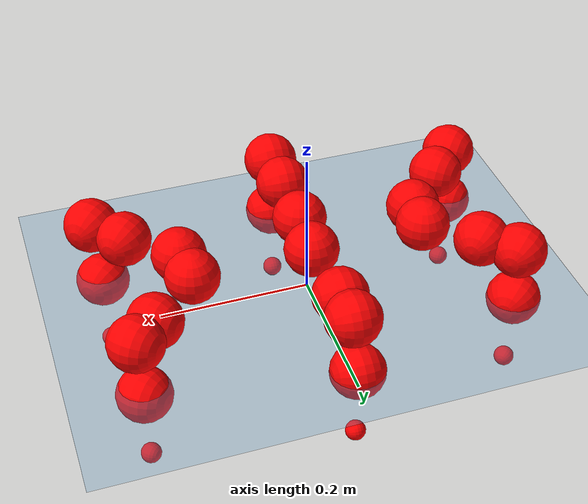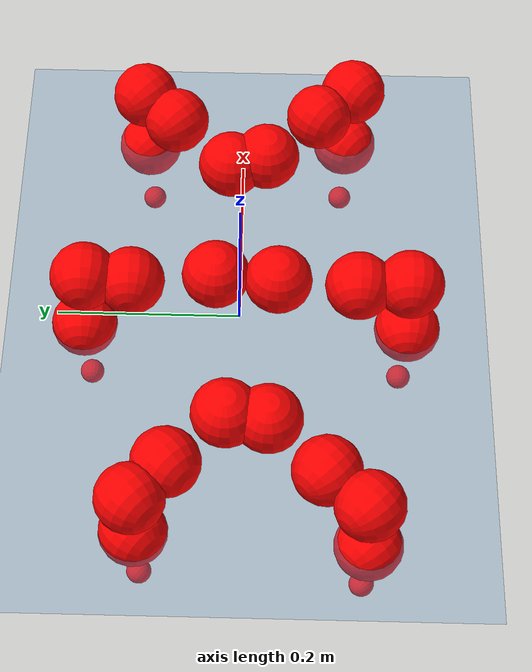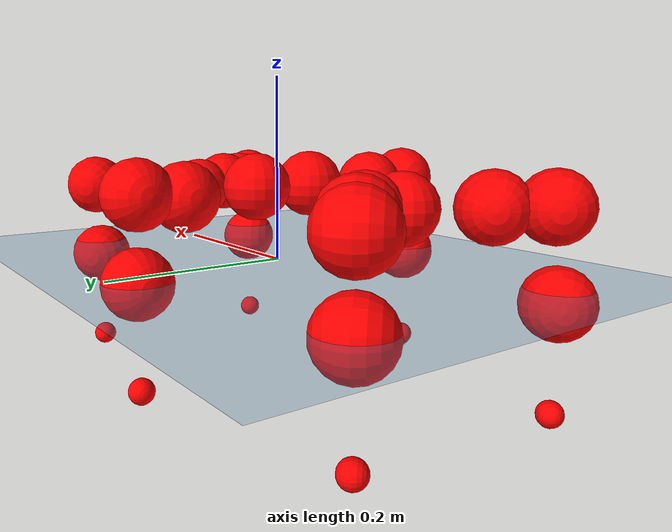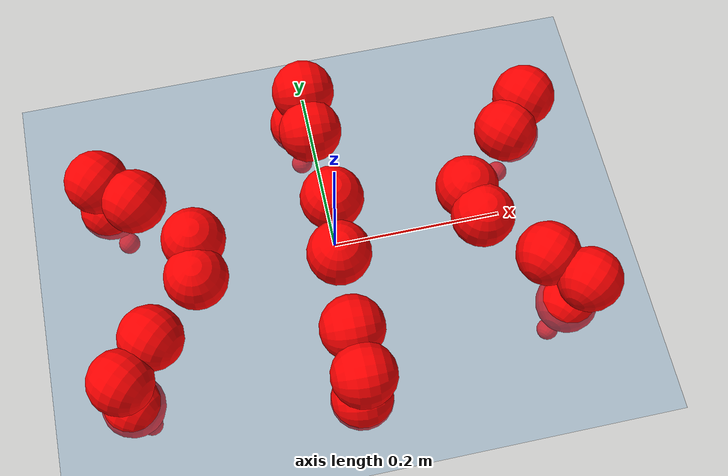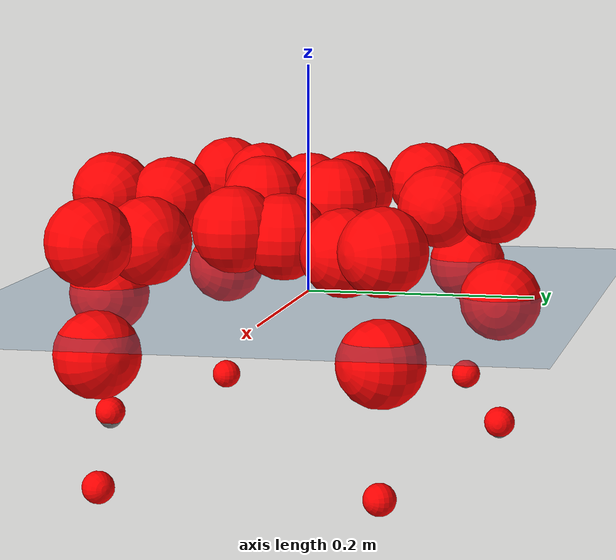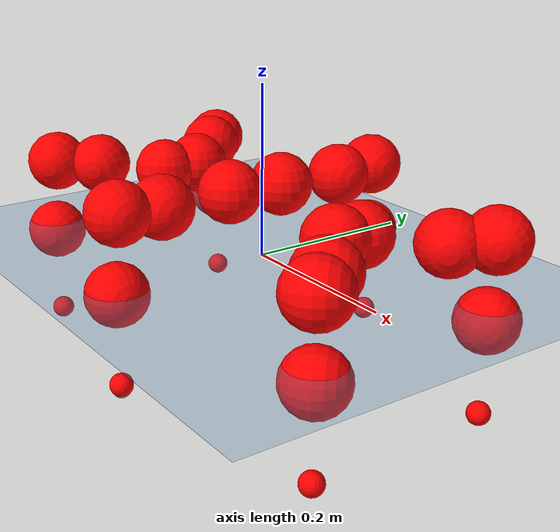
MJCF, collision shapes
<mujoco model="Golem">
  <compiler angle="radian" assetdir="assets" balanceinertia="true" inertiafromgeom="false"/>

  <option timestep="0.005" density="1.2" viscosity="2e-05"/>

  <size nkey="1"/>

  <visual>
    <quality shadowsize="8192"/>
    <map shadowclip="0.5"/>
  </visual>

  <default>
    <default class="/">
      <joint armature="0.01" damping="0.01" frictionloss="0.01"/>
      <geom contype="0" conaffinity="0" group="1" solref="-1000 -80"/>
      <site size="0.01 0.005 0.005" group="5"/>
      <general forcelimited="true" biastype="affine" gainprm="25" biasprm="0 -25 -0.5"/>
      <default class="visual">
        <geom type="mesh" group="2"/>
      </default>
      <default class="collision">
        <geom group="3"/>
      </default>
      <default class="foot">
        <geom size="0.01 0 0" condim="6" group="4" priority="1" solimp="0.015 1 0.01"/>
      </default>
      <default class="reward_collision_sphere">
        <geom group="5" rgba="1 0 0 1"/>
      </default>
    </default>
  </default>

  <asset>
    <texture type="skybox" colorspace="auto" name="//unnamed_texture_0" builtin="gradient" rgb1="0.95 0.95 0.95" rgb2="0.95 0.95 0.95" width="100" height="600"/>
    <texture type="2d" colorspace="auto" name="texplane" builtin="checker" rgb1="0.345 0.575 0.748" rgb2="0.345 0.575 0.748" markrgb="1 1 1" width="512" height="512"/>
    <material name="MatPlane" class="/" texture="texplane" texuniform="true" texrepeat="2 2" specular="0.9"/>
    <mesh name="body" class="/" file="body.stl" scale="0.001 0.001 0.001"/>
    <mesh name="coxa" class="/" file="coxa.stl" scale="0.001 0.001 0.001"/>
    <mesh name="femur" class="/" file="femur.stl" scale="0.001 0.001 0.001"/>
    <mesh name="tibia" class="/" file="tibia.stl" scale="0.001 0.001 0.001"/>
    <mesh name="tarsus" class="/" file="tarsus.stl" scale="0.001 0.001 0.001"/>
  </asset>

  <worldbody>
    <geom name="floor" class="/" size="100 100 0.125" type="plane" group="0" material="MatPlane"/>
    <light name="toplight_shadow" class="/" pos="0 0 5" dir="0.0990148 0.0990148 -0.990148" type="directional" ambient="0.04 0.04 0.04" diffuse="0.55 0.55 0.55" specular="0.12 0.12 0.12"/>
    <light name="toplight_fill" class="/" pos="0 0 5" dir="0.0990148 0.0990148 -0.990148" type="directional" castshadow="false" ambient="0.04 0.04 0.04" diffuse="0.3 0.3 0.3" specular="0.08 0.08 0.08"/>
    <body name="trunk" pos="-0.000663328 -0.00679342 -0.00288455" quat="1 6.00072e-05 7.23678e-05 -0.000799841">
      <inertial pos="0.00150801 0.000987127 0.00799336" quat="0.999942 -0.00399007 -0.00668315 -0.00746965" mass="2.38282" diaginertia="0.0103207 0.000240871 0.028"/>
      <joint name="//unnamed_joint_0" type="free"/>
      <geom name="//unnamed_geom_1" class="/" pos="0 0 0.0782606" quat="1 0 0 0" type="mesh" rgba="0.9 0.9 0.9 1" mesh="body"/>
      <site name="imu" class="/" pos="0.121552 0.0173653 0.111867" size="0.00905454"/>
      <camera name="track" class="/" pos="0 -0.959135 0" quat="0.707107 0.707107 0 0" mode="trackcom"/>
      <camera name="ego_camera" class="/" pos="0.131816 0 0.122282" quat="-0.5 -0.5 0.5 0.5"/>
      <body name="coxa_RR" pos="-0.182815 -0.0474778 0.0735634" quat="0.382054 0.00281012 -0.00108899 -0.924135">
        <inertial pos="0.000238788 0.00812036 -0.00755245" quat="0.999945 0.0102385 -0.0020876 -0.000873594" mass="0.13606" diaginertia="0.0103594 0.000250708 0.0272468"/>
        <joint name="coxa_joint_RR" class="/" pos="0 0 0" axis="-0.0036826 0.00901458 -0.999953" range="-3.23322 3.12569" armature="0.00879064" damping="0.0241154" frictionloss="0.0082221"/>
        <geom name="//unnamed_geom_2" class="/" type="mesh" rgba="0.2 0.2 0.2 1" mesh="coxa"/>
        <geom name="//unnamed_geom_3" class="reward_collision_sphere" size="0.0362182" pos="-0.0304192 0 0"/>
        <body name="femur_RR" pos="0.0522329 0.00104963 0.00338463" quat="0.501024 -0.497682 0.499401 0.501882">
          <inertial pos="0.0047163 -0.00162614 -0.000708587" quat="1 -9.73585e-05 -0.000121523 9.24682e-06" mass="0.144234" diaginertia="0.0103857 0.000243005 0.0263096"/>
          <joint name="femur_joint_RR" class="/" pos="0 0 0" axis="0.00240127 0.0119658 -0.999926" range="-3.06754 3.08612" armature="0.0111139" damping="0.0259643" frictionloss="0.00935137"/>
          <geom name="//unnamed_geom_4" class="/" type="mesh" rgba="0.9 0.9 0.9 1" mesh="femur"/>
          <geom name="//unnamed_geom_5" class="reward_collision_sphere" size="0.0362182"/>
          <body name="tibia_RR" pos="-0.0016382 -0.0560705 0.00319074" quat="0.000287805 1 -0.000460682 -0.000644136">
            <inertial pos="-0.00217096 0.00208513 0.000879709" quat="0.999927 0.0119712 0.0014512 -0.000414401" mass="0.153206" diaginertia="0.0102161 0.000231355 0.02375"/>
            <joint name="tibia_joint_RR" class="/" pos="0 0 0" axis="-0.00523617 -0.02038 0.999779" stiffness="0.00699479" range="-3.10601 3.32466" armature="0.00828007" damping="0" frictionloss="0.00985498"/>
            <geom name="//unnamed_geom_6" class="/" type="mesh" rgba="0.2 0.2 0.2 1" mesh="tibia"/>
            <geom name="//unnamed_geom_7" class="reward_collision_sphere" size="0.0362182"/>
            <body name="tarsus_RR" pos="0.090816 0.00669125 7.37585e-06" quat="1 0.000463147 -0.000449859 -0.000735548">
              <inertial pos="0.0563423 -0.00913597 0.00570491" quat="0.503034 0.503891 0.49297 0.500031" mass="0.132085" diaginertia="0.0101148 0.000215029 0.0246909"/>
              <joint name="tarsus_joint_RR" class="/" pos="0 0 0" axis="-0.00801496 -0.0138678 0.999872" range="-3.29709 3.1499" armature="0.00890082" damping="0.0464052" frictionloss="0.00811061"/>
              <geom name="//unnamed_geom_8" class="/" type="mesh" rgba="0.9 0.9 0.9 1" mesh="tarsus"/>
              <geom name="foot_1" class="foot" size="0.00865145" pos="0.113565 0 0" quat="0 -0.707107 0 0.707107"/>
              <geom name="//unnamed_geom_10" class="reward_collision_sphere" size="0.0362182"/>
              <geom name="//unnamed_geom_11" class="reward_collision_sphere" size="0.0135818" pos="0.109002 0 0"/>
              <site name="foot_1" class="foot" pos="0.113565 0 0" quat="0 -0.707107 0 0.707107" size="0.00905454"/>
            </body>
          </body>
        </body>
      </body>
      <body name="coxa_RM" pos="-0.00280513 -0.0645708 0.0858101" quat="0.707203 -7.19048e-05 -5.29161e-05 -0.707011">
        <inertial pos="-0.00131267 -0.0015196 0.000399465" quat="0.999956 -0.00844838 -0.00411617 -0.000311361" mass="0.156433" diaginertia="0.0108203 0.000249586 0.0275386"/>
        <joint name="coxa_joint_RM" class="/" pos="0 0 0" axis="-0.000581159 -0.00562766 -0.999984" stiffness="0.0360775" range="-3.1619 3.1279" armature="0.00839079" damping="0.033132" frictionloss="0.0130543"/>
        <geom name="//unnamed_geom_12" class="/" type="mesh" rgba="0.2 0.2 0.2 1" mesh="coxa"/>
        <geom name="//unnamed_geom_13" class="reward_collision_sphere" size="0.0362182" pos="-0.0304192 0 0"/>
        <body name="femur_RM" pos="0.0550551 -0.00349519 -0.00302728" quat="0.499866 -0.500506 0.499469 0.500158">
          <inertial pos="-0.000976582 0.00222502 -0.00481646" quat="0.999989 0.00207787 -0.00362698 0.00216412" mass="0.140679" diaginertia="0.0113376 0.000247209 0.0264788"/>
          <joint name="femur_joint_RM" class="/" pos="0 0 0" axis="0.00167839 -0.00527154 -0.999985" stiffness="0.00408286" range="-3.12278 3.18099" armature="0.00802377" damping="0.0299586" frictionloss="0.00816598"/>
          <geom name="//unnamed_geom_14" class="/" type="mesh" rgba="0.9 0.9 0.9 1" mesh="femur"/>
          <geom name="//unnamed_geom_15" class="reward_collision_sphere" size="0.0362182"/>
          <body name="tibia_RM" pos="-0.00343406 -0.0538394 0.000870994" quat="-2.05535e-05 1 -6.15047e-05 -0.00041518">
            <inertial pos="0.00810902 0.00682588 -8.97137e-05" quat="0.999142 0.0141354 -0.0378988 -0.00884882" mass="0.151087" diaginertia="0.0104794 0.000254066 0.0301165"/>
            <joint name="tibia_joint_RM" class="/" pos="0 0 0" axis="0.00763435 -0.0023853 0.999968" range="-3.09822 3.10533" armature="0.00802676" damping="0" frictionloss="0.00782269"/>
            <geom name="//unnamed_geom_16" class="/" type="mesh" rgba="0.2 0.2 0.2 1" mesh="tibia"/>
            <geom name="//unnamed_geom_17" class="reward_collision_sphere" size="0.0362182"/>
            <body name="tarsus_RM" pos="0.091127 0.00437938 0.000828251" quat="1 0.000169669 9.81622e-05 0.000327803">
              <inertial pos="0.0592204 0.00343578 -0.00119646" quat="0.495001 0.504278 0.506151 0.494458" mass="0.141277" diaginertia="0.0101338 0.000237408 0.0262646"/>
              <joint name="tarsus_joint_RM" class="/" pos="0 0 0" axis="0.00140421 0.00323335 0.999994" stiffness="0.00481277" range="-3.14657 3.09982" armature="0.0124993" damping="0" frictionloss="0.00998496"/>
              <geom name="//unnamed_geom_18" class="/" type="mesh" rgba="0.9 0.9 0.9 1" mesh="tarsus"/>
              <geom name="foot_2" class="foot" size="0.0107786" pos="0.113565 0 0" quat="0 -0.707107 0 0.707107"/>
              <geom name="//unnamed_geom_20" class="reward_collision_sphere" size="0.0362182"/>
              <geom name="//unnamed_geom_21" class="reward_collision_sphere" size="0.0135818" pos="0.109002 0 0"/>
              <site name="foot_2" class="foot" pos="0.113565 0 0" quat="0 -0.707107 0 0.707107" size="0.00905454"/>
            </body>
          </body>
        </body>
      </body>
      <body name="coxa_RF" pos="0.186339 -0.0412299 0.0771963" quat="0.923867 1.15708e-05 2.91346e-05 -0.382714">
        <inertial pos="-0.00589858 -0.000156322 -0.000231712" quat="0.999953 -0.000447227 -0.00947056 -0.00201291" mass="0.146301" diaginertia="0.009699 0.000258039 0.0296008"/>
        <joint name="coxa_joint_RF" class="/" pos="0 0 0" axis="0.00357699 0.00363333 -0.999987" range="-3.07689 3.09754" armature="0.00994285" damping="0.03301" frictionloss="0.00808346"/>
        <geom name="//unnamed_geom_22" class="/" type="mesh" rgba="0.2 0.2 0.2 1" mesh="coxa"/>
        <geom name="//unnamed_geom_23" class="reward_collision_sphere" size="0.0362182" pos="-0.0304192 0 0"/>
        <body name="femur_RF" pos="0.0529617 0.00106461 -0.00344341" quat="0.49972 -0.501138 0.500264 0.498875">
          <inertial pos="-0.00314226 -0.00184687 0.00510134" quat="0.999997 -2.14981e-05 -0.00233293 0.000290507" mass="0.152113" diaginertia="0.010613 0.00022011 0.0271005"/>
          <joint name="femur_joint_RF" class="/" pos="0 0 0" axis="0.00313679 -0.00588933 -0.999978" stiffness="0.0163025" range="-3.26201 3.11959" armature="0.00730324" damping="0.0298227" frictionloss="0.00886292"/>
          <geom name="//unnamed_geom_24" class="/" type="mesh" rgba="0.9 0.9 0.9 1" mesh="femur"/>
          <geom name="//unnamed_geom_25" class="reward_collision_sphere" size="0.0362182"/>
          <body name="tibia_RF" pos="-0.00200065 -0.052804 -0.00248402" quat="0.000478803 1 -9.76469e-05 -0.000265666">
            <inertial pos="-0.000438763 -0.00336794 0.00219052" quat="0.999998 -0.00161757 -0.000763021 -0.00113766" mass="0.14922" diaginertia="0.00958756 0.000264239 0.0257916"/>
            <joint name="tibia_joint_RF" class="/" pos="0 0 0" axis="-0.000209092 0.00451229 0.99999" range="-3.0962 3.11313" armature="0.00861351" damping="0.00484464" frictionloss="0.0114447"/>
            <geom name="//unnamed_geom_26" class="/" type="mesh" rgba="0.2 0.2 0.2 1" mesh="tibia"/>
            <geom name="//unnamed_geom_27" class="reward_collision_sphere" size="0.0362182"/>
            <body name="tarsus_RF" pos="0.0914919 -0.00696394 4.13812e-05" quat="0.999993 -0.00116605 -0.00289103 -0.00213054">
              <inertial pos="0.0659304 0.00790229 -0.00105534" quat="0.519602 0.514934 0.500379 0.463118" mass="0.153853" diaginertia="0.00950728 0.000273526 0.0264514"/>
              <joint name="tarsus_joint_RF" class="/" pos="0 0 0" axis="-0.017861 -0.0178015 0.999682" stiffness="0.0382279" range="-3.29123 3.09717" armature="0.00507255" damping="0.000146056" frictionloss="0.00936241"/>
              <geom name="//unnamed_geom_28" class="/" type="mesh" rgba="0.9 0.9 0.9 1" mesh="tarsus"/>
              <geom name="foot_3" class="foot" size="0.00884194" pos="0.113565 0 0" quat="0 -0.707107 0 0.707107"/>
              <geom name="//unnamed_geom_30" class="reward_collision_sphere" size="0.0362182"/>
              <geom name="//unnamed_geom_31" class="reward_collision_sphere" size="0.0135818" pos="0.109002 0 0"/>
              <site name="foot_3" class="foot" pos="0.113565 0 0" quat="0 -0.707107 0 0.707107" size="0.00905454"/>
            </body>
          </body>
        </body>
      </body>
      <body name="coxa_LR" pos="-0.178828 0.0391325 0.0762605" quat="0.382777 0.000533606 7.6032e-05 0.923841">
        <inertial pos="-0.00035083 0.00826157 0.00110682" quat="0.999664 0.0254601 -0.0018627 0.00446454" mass="0.159637" diaginertia="0.0120595 0.000253308 0.0307679"/>
        <joint name="coxa_joint_LR" class="/" pos="0 0 0" axis="0.00807467 -0.00152814 -0.999966" stiffness="0.0190598" range="-3.10965 2.9843" armature="0.0121966" damping="0" frictionloss="0.0082471"/>
        <geom name="//unnamed_geom_32" class="/" type="mesh" rgba="0.2 0.2 0.2 1" mesh="coxa"/>
        <geom name="//unnamed_geom_33" class="reward_collision_sphere" size="0.0362182" pos="-0.0304192 0 0"/>
        <body name="femur_LR" pos="0.0514499 0.000299061 0.0037811" quat="0.501448 -0.498926 0.500525 0.499096">
          <inertial pos="0.000256866 0.000302061 0.00144382" quat="0.999271 0.00228115 0.031766 -0.0210396" mass="0.150345" diaginertia="0.0107643 0.000247671 0.023715"/>
          <joint name="femur_joint_LR" class="/" pos="0 0 0" axis="0.00912472 -0.00290353 0.999954" stiffness="0.0264221" range="-3.31441 3.24289" armature="0.00795012" damping="0.0310724" frictionloss="0.00813189"/>
          <geom name="//unnamed_geom_34" class="/" type="mesh" rgba="0.9 0.9 0.9 1" mesh="femur"/>
          <geom name="//unnamed_geom_35" class="reward_collision_sphere" size="0.0362182"/>
          <body name="tibia_LR" pos="0.00309042 -0.0510511 0.00364378" quat="5.11818e-05 0.999999 0.00108473 5.87289e-05">
            <inertial pos="-0.00203181 0.00773943 -0.00381363" quat="0.9999 -0.00255915 -0.00261612 -0.0136667" mass="0.152167" diaginertia="0.0104503 0.000254602 0.0278395"/>
            <joint name="tibia_joint_LR" class="/" pos="0 0 0" axis="6.68956e-05 0.00064344 -1" range="-3.03428 3.08756" armature="0.010149" damping="0.0602313" frictionloss="0.00763164"/>
            <geom name="//unnamed_geom_36" class="/" type="mesh" rgba="0.2 0.2 0.2 1" mesh="tibia"/>
            <geom name="//unnamed_geom_37" class="reward_collision_sphere" size="0.0362182"/>
            <body name="tarsus_LR" pos="0.0801945 0.00104961 0.000157651" quat="0.999995 -0.000446401 -0.000802765 -0.00290019">
              <inertial pos="0.0552547 -0.000919629 0.00106093" quat="0.50702 0.509768 0.48975 0.493166" mass="0.141572" diaginertia="0.0106087 0.000240954 0.0269198"/>
              <joint name="tarsus_joint_LR" class="/" pos="0 0 0" axis="-0.0103326 -0.0117713 -0.999877" stiffness="0.0301235" range="-3.0134 3.15952" armature="0.0089538" damping="0.0235941" frictionloss="0.0120913"/>
              <geom name="//unnamed_geom_38" class="/" type="mesh" rgba="0.9 0.9 0.9 1" mesh="tarsus"/>
              <geom name="foot_4" class="foot" size="0.00939942" pos="0.113565 0 0" quat="0.707107 0 -0.707107 0"/>
              <geom name="//unnamed_geom_40" class="reward_collision_sphere" size="0.0362182"/>
              <geom name="//unnamed_geom_41" class="reward_collision_sphere" size="0.0135818" pos="0.109002 0 0"/>
              <site name="foot_4" class="foot" pos="0.113565 0 0" quat="0.707107 0 -0.707107 0" size="0.00905454"/>
            </body>
          </body>
        </body>
      </body>
      <body name="coxa_LM" pos="0.00269478 0.0625114 0.0851239" quat="0.707112 0.00106493 0.000458905 0.707101">
        <inertial pos="0.00609681 -0.000448179 0.0048573" quat="1 -0.000162402 -0.00034713 0.000280735" mass="0.15634" diaginertia="0.0118051 0.000285931 0.025603"/>
        <joint name="coxa_joint_LM" class="/" pos="0 0 0" axis="-0.00410654 -0.00651028 -0.99997" stiffness="0.00510461" range="-3.14615 3.12107" armature="0.00583979" damping="0.0454732" frictionloss="0.010601"/>
        <geom name="//unnamed_geom_42" class="/" type="mesh" rgba="0.2 0.2 0.2 1" mesh="coxa"/>
        <geom name="//unnamed_geom_43" class="reward_collision_sphere" size="0.0362182" pos="-0.0304192 0 0"/>
        <body name="femur_LM" pos="0.0595073 0.00712927 -0.00507351" quat="0.499363 -0.499967 0.499697 0.500973">
          <inertial pos="-0.004993 -0.00196861 -0.00681091" quat="0.999975 -0.000664652 0.00269776 0.00647197" mass="0.148057" diaginertia="0.0105222 0.000253904 0.0275804"/>
          <joint name="femur_joint_LM" class="/" pos="0 0 0" axis="-0.000361871 6.07834e-05 1" range="-3.09706 3.23715" armature="0.00837613" damping="0.0257923" frictionloss="0.00736793"/>
          <geom name="//unnamed_geom_44" class="/" type="mesh" rgba="0.9 0.9 0.9 1" mesh="femur"/>
          <geom name="//unnamed_geom_45" class="reward_collision_sphere" size="0.0362182"/>
          <body name="tibia_LM" pos="-0.00501393 -0.0497513 -0.00144119" quat="0.000903286 0.999999 -1.50809e-05 -0.000844927">
            <inertial pos="0.00287209 0.00778776 -0.00875586" quat="0.99901 -0.00583292 -0.0192715 0.0396756" mass="0.155652" diaginertia="0.0104298 0.000262171 0.0288443"/>
            <joint name="tibia_joint_LM" class="/" pos="0 0 0" axis="0.00906383 0.0217966 -0.999721" stiffness="0.0403743" range="-3.16788 3.274" armature="0.00889056" damping="0.0182646" frictionloss="0.00896664"/>
            <geom name="//unnamed_geom_46" class="/" type="mesh" rgba="0.2 0.2 0.2 1" mesh="tibia"/>
            <geom name="//unnamed_geom_47" class="reward_collision_sphere" size="0.0362182"/>
            <body name="tarsus_LM" pos="0.0861591 0.00492175 -0.00657335" quat="1 -7.98801e-05 5.97056e-05 0.000104447">
              <inertial pos="0.0621368 0.000160246 0.00583592" quat="0.507576 0.474818 0.527308 0.488734" mass="0.13993" diaginertia="0.0105712 0.00027444 0.0291045"/>
              <joint name="tarsus_joint_LM" class="/" pos="0 0 0" axis="0.0284038 0.0116804 -0.999528" stiffness="0.0360529" range="-3.18264 3.26877" armature="0.00959286" damping="0.00707731" frictionloss="0.00911528"/>
              <geom name="//unnamed_geom_48" class="/" type="mesh" rgba="0.9 0.9 0.9 1" mesh="tarsus"/>
              <geom name="foot_5" class="foot" size="0.00964918" pos="0.113565 0 0" quat="0.707107 0 -0.707107 0"/>
              <geom name="//unnamed_geom_50" class="reward_collision_sphere" size="0.0362182"/>
              <geom name="//unnamed_geom_51" class="reward_collision_sphere" size="0.0135818" pos="0.109002 0 0"/>
              <site name="foot_5" class="foot" pos="0.113565 0 0" quat="0.707107 0 -0.707107 0" size="0.00905454"/>
            </body>
          </body>
        </body>
      </body>
      <body name="coxa_LF" pos="0.178872 0.04141 0.0713471" quat="0.923281 -0.0018129 -0.00262476 0.384113">
        <inertial pos="0.000813543 -0.00107607 -0.000946485" quat="0.999019 -0.0351011 0.0268882 -0.00223333" mass="0.136893" diaginertia="0.0111647 0.000235658 0.0308861"/>
        <joint name="coxa_joint_LF" class="/" pos="0 0 0" axis="-0.00124126 -0.00225626 -0.999997" stiffness="0.0427353" range="-3.14371 3.13584" armature="0.0102718" damping="0.0221932" frictionloss="0.0097758"/>
        <geom name="//unnamed_geom_52" class="/" type="mesh" rgba="0.2 0.2 0.2 1" mesh="coxa"/>
        <geom name="//unnamed_geom_53" class="reward_collision_sphere" size="0.0362182" pos="-0.0304192 0 0"/>
        <body name="femur_LF" pos="0.0589119 0.000137634 -0.00397501" quat="0.49931 -0.500098 0.499995 0.500596">
          <inertial pos="-0.00633861 -0.000372515 -0.00772509" quat="1 0.000800089 0.000140734 -0.000535333" mass="0.157667" diaginertia="0.0113036 0.000253397 0.0295649"/>
          <joint name="femur_joint_LF" class="/" pos="0 0 0" axis="-0.00324945 -0.0150381 0.999882" range="-3.14318 2.95802" armature="0.00704397" damping="0.0333726" frictionloss="0.0099798"/>
          <geom name="//unnamed_geom_54" class="/" type="mesh" rgba="0.9 0.9 0.9 1" mesh="femur"/>
          <geom name="//unnamed_geom_55" class="reward_collision_sphere" size="0.0362182"/>
          <body name="tibia_LF" pos="-0.00548737 -0.0482158 0.00370392" quat="0.00134312 0.999998 0.000998082 -0.000767482">
            <inertial pos="-0.000618186 0.00127525 -0.000783411" quat="0.999974 -0.00305487 -0.000182725 0.00659141" mass="0.146799" diaginertia="0.0104248 0.000258905 0.0270963"/>
            <joint name="tibia_joint_LF" class="/" pos="0 0 0" axis="0.00536801 0.0259109 -0.99965" range="-3.12683 3.06047" armature="0.0122801" damping="0" frictionloss="0.00916423"/>
            <geom name="//unnamed_geom_56" class="/" type="mesh" rgba="0.2 0.2 0.2 1" mesh="tibia"/>
            <geom name="//unnamed_geom_57" class="reward_collision_sphere" size="0.0362182"/>
            <body name="tarsus_LF" pos="0.0894574 -0.00372241 -0.00135337" quat="1 0.000239745 -3.79611e-05 5.67101e-05">
              <inertial pos="0.0662517 8.63771e-05 -0.00098438" quat="0.500225 0.499738 0.500072 0.499965" mass="0.155436" diaginertia="0.0107665 0.000256983 0.0270448"/>
              <joint name="tarsus_joint_LF" class="/" pos="0 0 0" axis="0.0061101 0.00299416 -0.999977" stiffness="0.0312157" range="-2.99712 2.98751" armature="0.00883721" damping="0.0204751" frictionloss="0.00809663"/>
              <geom name="//unnamed_geom_58" class="/" type="mesh" rgba="0.9 0.9 0.9 1" mesh="tarsus"/>
              <geom name="foot_6" class="foot" size="0.00766322" pos="0.113565 0 0" quat="0.707107 0 -0.707107 0"/>
              <geom name="//unnamed_geom_60" class="reward_collision_sphere" size="0.0362182"/>
              <geom name="//unnamed_geom_61" class="reward_collision_sphere" size="0.0135818" pos="0.109002 0 0"/>
              <site name="foot_6" class="foot" pos="0.113565 0 0" quat="0.707107 0 -0.707107 0" size="0.00905454"/>
            </body>
          </body>
        </body>
      </body>
    </body>
  </worldbody>

  <contact>
    <pair class="/" geom1="floor" geom2="foot_1" name="//unnamed_contact_0"/>
    <pair class="/" geom1="floor" geom2="foot_2" name="//unnamed_contact_1"/>
    <pair class="/" geom1="floor" geom2="foot_3" name="//unnamed_contact_2"/>
    <pair class="/" geom1="floor" geom2="foot_4" name="//unnamed_contact_3"/>
    <pair class="/" geom1="floor" geom2="foot_5" name="//unnamed_contact_4"/>
    <pair class="/" geom1="floor" geom2="foot_6" name="//unnamed_contact_5"/>
  </contact>

  <actuator>
    <general name="coxa_joint_RR" class="/" joint="coxa_joint_RR" forcerange="-6.36618 6.36618" gainprm="20.7134" biasprm="0 -20.7134 -0.40944"/>
    <general name="femur_joint_RR" class="/" joint="femur_joint_RR" forcerange="-7.09101 7.09101" gainprm="20.7134" biasprm="0 -20.7134 -0.40944"/>
    <general name="tibia_joint_RR" class="/" joint="tibia_joint_RR" forcerange="-8.59583 8.59583" gainprm="20.7134" biasprm="0 -20.7134 -0.40944"/>
    <general name="tarsus_joint_RR" class="/" joint="tarsus_joint_RR" forcerange="-7.44704 7.44704" gainprm="20.7134" biasprm="0 -20.7134 -0.40944"/>
    <general name="coxa_joint_RM" class="/" joint="coxa_joint_RM" forcerange="-6.52465 6.52465" gainprm="20.7134" biasprm="0 -20.7134 -0.40944"/>
    <general name="femur_joint_RM" class="/" joint="femur_joint_RM" forcerange="-7.12086 7.12086" gainprm="20.7134" biasprm="0 -20.7134 -0.40944"/>
    <general name="tibia_joint_RM" class="/" joint="tibia_joint_RM" forcerange="-8.81221 8.81221" gainprm="20.7134" biasprm="0 -20.7134 -0.40944"/>
    <general name="tarsus_joint_RM" class="/" joint="tarsus_joint_RM" forcerange="-6.51635 6.51635" gainprm="20.7134" biasprm="0 -20.7134 -0.40944"/>
    <general name="coxa_joint_RF" class="/" joint="coxa_joint_RF" forcerange="-6.09138 6.09138" gainprm="20.7134" biasprm="0 -20.7134 -0.40944"/>
    <general name="femur_joint_RF" class="/" joint="femur_joint_RF" forcerange="-4.40487 4.40487" gainprm="20.7134" biasprm="0 -20.7134 -0.40944"/>
    <general name="tibia_joint_RF" class="/" joint="tibia_joint_RF" forcerange="-6.13347 6.13347" gainprm="20.7134" biasprm="0 -20.7134 -0.40944"/>
    <general name="tarsus_joint_RF" class="/" joint="tarsus_joint_RF" forcerange="-4.42789 4.42789" gainprm="20.7134" biasprm="0 -20.7134 -0.40944"/>
    <general name="coxa_joint_LR" class="/" joint="coxa_joint_LR" forcerange="-8.03179 8.03179" gainprm="20.7134" biasprm="0 -20.7134 -0.40944"/>
    <general name="femur_joint_LR" class="/" joint="femur_joint_LR" forcerange="-6.48887 6.48887" gainprm="20.7134" biasprm="0 -20.7134 -0.40944"/>
    <general name="tibia_joint_LR" class="/" joint="tibia_joint_LR" forcerange="-5.91639 5.91639" gainprm="20.7134" biasprm="0 -20.7134 -0.40944"/>
    <general name="tarsus_joint_LR" class="/" joint="tarsus_joint_LR" forcerange="-6.40846 6.40846" gainprm="20.7134" biasprm="0 -20.7134 -0.40944"/>
    <general name="coxa_joint_LM" class="/" joint="coxa_joint_LM" forcerange="-6.2038 6.2038" gainprm="20.7134" biasprm="0 -20.7134 -0.40944"/>
    <general name="femur_joint_LM" class="/" joint="femur_joint_LM" forcerange="-6.77843 6.77843" gainprm="20.7134" biasprm="0 -20.7134 -0.40944"/>
    <general name="tibia_joint_LM" class="/" joint="tibia_joint_LM" forcerange="-8.43929 8.43929" gainprm="20.7134" biasprm="0 -20.7134 -0.40944"/>
    <general name="tarsus_joint_LM" class="/" joint="tarsus_joint_LM" forcerange="-7.62507 7.62507" gainprm="20.7134" biasprm="0 -20.7134 -0.40944"/>
    <general name="coxa_joint_LF" class="/" joint="coxa_joint_LF" forcerange="-6.55862 6.55862" gainprm="20.7134" biasprm="0 -20.7134 -0.40944"/>
    <general name="femur_joint_LF" class="/" joint="femur_joint_LF" forcerange="-8.11769 8.11769" gainprm="20.7134" biasprm="0 -20.7134 -0.40944"/>
    <general name="tibia_joint_LF" class="/" joint="tibia_joint_LF" forcerange="-6.98431 6.98431" gainprm="20.7134" biasprm="0 -20.7134 -0.40944"/>
    <general name="tarsus_joint_LF" class="/" joint="tarsus_joint_LF" forcerange="-6.56468 6.56468" gainprm="20.7134" biasprm="0 -20.7134 -0.40944"/>
  </actuator>

  <sensor>
    <gyro site="imu" name="imu_angular_velocity"/>
    <velocimeter site="imu" name="imu_linear_velocity"/>
    <framelinvel objtype="site" objname="foot_1" name="foot_1_global_linear_velocity"/>
    <framelinvel objtype="site" objname="foot_2" name="foot_2_global_linear_velocity"/>
    <framelinvel objtype="site" objname="foot_3" name="foot_3_global_linear_velocity"/>
    <framelinvel objtype="site" objname="foot_4" name="foot_4_global_linear_velocity"/>
    <framelinvel objtype="site" objname="foot_5" name="foot_5_global_linear_velocity"/>
    <framelinvel objtype="site" objname="foot_6" name="foot_6_global_linear_velocity"/>
  </sensor>

  <keyframe>
    <key name="home" qpos="0 0 0.1457 1 0 0 0 0 0 0 0 0 0 0 0 0 0 0 0 0 0 0 0 0 0 0 0 0 0 0 0"/>
  </keyframe>
</mujoco>
